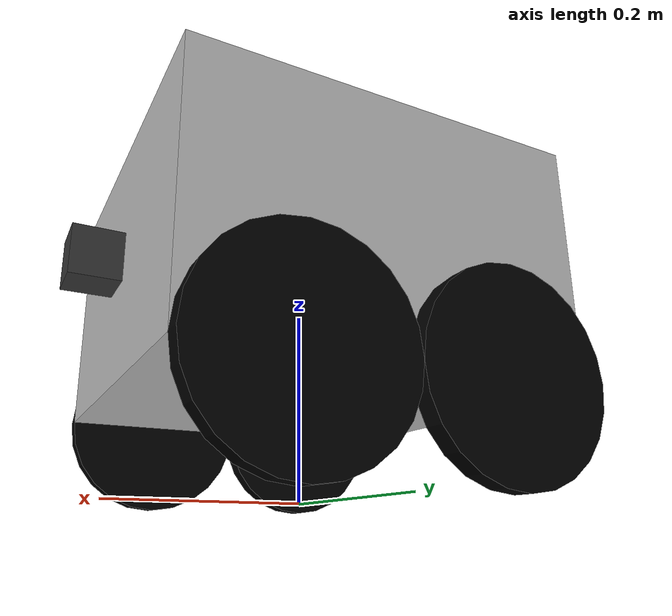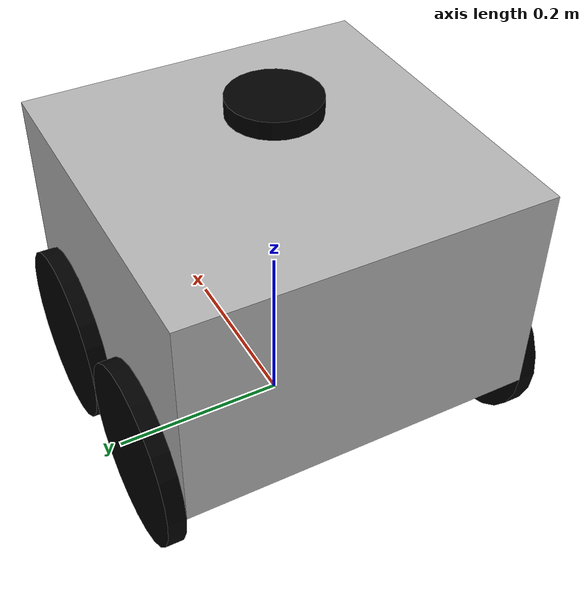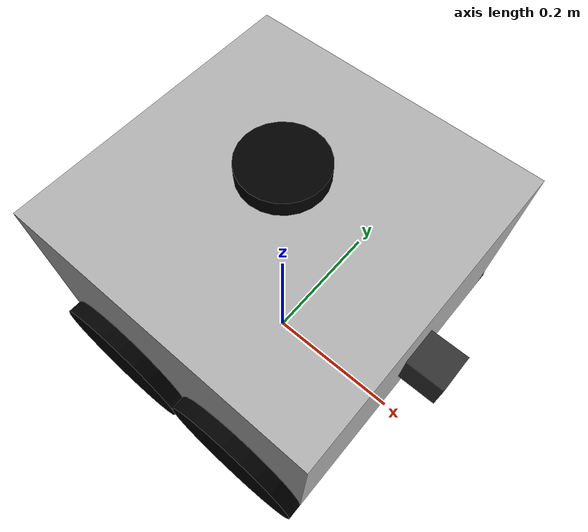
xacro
<?xml version="1.0"?>
<robot name="robo_bot" xmlns:xacro="http://ros.org/wiki/xacro">

  <material name="black">
    <color rgba="0.0 0.0 0.0 1.0"/>
  </material>

  <!-- Robot Parameters -->
  <xacro:property name="wheel_radius" value="0.1"/>
  <xacro:property name="wheel_width" value="0.02"/>
  <xacro:property name="base_length" value="0.4"/>
  <xacro:property name="base_width" value="0.4"/>
  <xacro:property name="base_height" value="0.25"/>
  <xacro:property name="clearance" value="0.00"/>

  <!-- Base Link -->
  <link name="base">
    <visual>
      <geometry>
        <box size="${base_length} ${base_width} ${base_height}"/>
      </geometry>
      <origin xyz="0 0 ${wheel_radius + clearance + base_height/2}" rpy="0 0 0"/>
      <material name="gray">
        <color rgba="0.7 0.7 0.7 1.0"/>
      </material>
    </visual>
    <collision>
      <geometry>
        <box size="${base_length} ${base_width} ${base_height}"/>
      </geometry>
      <origin xyz="0 0 ${wheel_radius + clearance + base_height/2}" rpy="0 0 0"/>
    </collision>
    <inertial>
      <mass value="0.5"/>
      <origin xyz="0 0 ${wheel_radius + clearance + base_height/2}" rpy="0 0 0"/>
      <inertia ixx="0.01" iyy="0.01" izz="0.01" ixy="0.0" ixz="0.0" iyz="0.0"/>
    </inertial>
  </link>

<xacro:macro name="wheel" params="name x_pos y_pos mimic_joint=''" >
  <link name="${name}">
    <visual>
      <geometry>
        <cylinder radius="${wheel_radius}" length="${wheel_width}"/>
      </geometry>
      <origin xyz="0 0 0" rpy="1.5708 0 0"/>
      <material name="black"/>
    </visual>
    <collision>
      <geometry>
        <cylinder radius="${wheel_radius}" length="${wheel_width}"/>
      </geometry>
      <origin xyz="0 0 0" rpy="1.5708 0 0"/>
    </collision>
    <inertial>
      <mass value="0.5"/>
      <origin xyz="0 0 0" rpy="0 0 0"/>
      <inertia
        ixx="0.0001875"
        iyy="0.0001875"
        izz="0.000625"
        ixy="0.0"
        ixz="0.0"
        iyz="0.0"/>
    </inertial>
  </link>

  <gazebo reference="${name}">
    <mu1>0.1</mu1>
    <mu2>0.1</mu2>
    <kp>100000.0</kp>
    <kd>1.0</kd>
    <material>Gazebo/Black</material>
  </gazebo>

  <joint name="${name}_joint" type="continuous">
    <parent link="base"/>
    <child link="${name}"/>
    <origin xyz="${x_pos} ${y_pos} ${wheel_radius}" rpy="0 0 0"/>
    <axis xyz="0 1 0"/>
    <limit effort="100.0" velocity="5.0"/>
    <dynamics damping="0.0" friction="0.0"/>
    <xacro:if value="${mimic_joint != ''}">
      <mimic joint="${mimic_joint}" multiplier="1"/>
    </xacro:if>
  </joint>
</xacro:macro>

<!-- Front wheels mimic rear wheels -->
<xacro:wheel name="wheel_fl" x_pos="${ base_length/2 - wheel_radius }" y_pos="${  base_width/2 + wheel_width/2 }" mimic_joint="wheel_rl_joint"/>
<xacro:wheel name="wheel_fr" x_pos="${ base_length/2 - wheel_radius }" y_pos="${ -base_width/2 - wheel_width/2 }" mimic_joint="wheel_rr_joint"/>

<!-- Rear wheels are driven -->
<xacro:wheel name="wheel_rl" x_pos="${-base_length/2 + wheel_radius }" y_pos="${  base_width/2 + wheel_width/2 }"/>
<xacro:wheel name="wheel_rr" x_pos="${-base_length/2 + wheel_radius }" y_pos="${ -base_width/2 - wheel_width/2 }"/>

  <!-- Differential Drive Plugin -->
  <gazebo>
    <plugin name="diff_drive_controller_rear" filename="libgazebo_ros_diff_drive.so">
      <ros>
        <remapping>cmd_vel:=/cmd_vel</remapping>
      </ros>
      <left_joint>wheel_rl_joint</left_joint>
      <right_joint>wheel_rr_joint</right_joint>
      <wheel_separation>${base_width}</wheel_separation>
      <wheel_radius>${wheel_radius}</wheel_radius>
      <max_wheel_torque>1.0</max_wheel_torque>
      <max_wheel_speed>5.0</max_wheel_speed>
      <command_topic>/cmd_vel</command_topic>
      <odometry_topic>/odom</odometry_topic>
      <odometry_frame>odom</odometry_frame>
      <robot_base_frame>base</robot_base_frame>
      <publish_odom>true</publish_odom>
      <publish_tf>true</publish_tf>
    </plugin>
  </gazebo>

  <gazebo>
    <plugin name="diff_drive_controller_front" filename="libgazebo_ros_diff_drive.so">
      <ros>
        <remapping>cmd_vel:=/cmd_vel</remapping>
      </ros>
      <left_joint>wheel_fl_joint</left_joint>
      <right_joint>wheel_fr_joint</right_joint>
      <wheel_separation>${base_width}</wheel_separation>
      <wheel_radius>${wheel_radius}</wheel_radius>
      <max_wheel_torque>1.0</max_wheel_torque>
      <max_wheel_speed>5.0</max_wheel_speed>
      <command_topic>/cmd_vel</command_topic>
      <odometry_topic>/odom</odometry_topic>
      <odometry_frame>odom</odometry_frame>
      <robot_base_frame>base</robot_base_frame>
      <publish_odom>true</publish_odom>
      <publish_tf>true</publish_tf>
    </plugin>
  </gazebo>

   <!-- LIDAR -->
  <link name="lidar_link">
    <visual>
      <geometry>
        <cylinder radius="0.05" length="0.02"/>
      </geometry>
      <origin xyz="0 0 0" rpy="0 0 0"/>
      <material name="black">
        <color rgba="0.0 0.0 0.0 1.0"/>
      </material>
    </visual>
    <collision>
      <geometry>
        <cylinder radius="0.05" length="0.02"/>
      </geometry>
      <origin xyz="0 0 0" rpy="0 0 0"/>
    </collision>
    <inertial>
      <mass value="0.1"/>
      <origin xyz="0 0 0" rpy="0 0 0"/>
      <inertia ixx="0.0001" iyy="0.0001" izz="0.0001" ixy="0.0" ixz="0.0" iyz="0.0"/>
    </inertial>
  </link>

  <joint name="lidar_joint" type="fixed">
    <parent link="base"/>
    <child link="lidar_link"/>
    <origin xyz="0 0 ${wheel_radius + clearance + base_height + 0.05}" rpy="0 0 0"/>
  </joint>

  <gazebo reference="lidar_link">
    <sensor name="lidar_sensor" type="ray">
      <pose>0 0 0 0 0 0</pose>
      <update_rate>30</update_rate>
      <visualize>true</visualize>
      <ray>
        <scan>
          <horizontal>
            <samples>360</samples>
            <resolution>1</resolution>
            <min_angle>-3.14</min_angle>
            <max_angle>3.14</max_angle>
          </horizontal>
        </scan>
        <range>
          <min>0.1</min>
          <max>10.0</max>
          <resolution>0.01</resolution>
        </range>
      </ray>
      <plugin name="gazebo_ros_laser" filename="libgazebo_ros_ray_sensor.so">
        <frame_name>lidar_link</frame_name>
        <output_type>sensor_msgs/LaserScan</output_type>
      </plugin>
    </sensor>
  </gazebo>

  <!-- Camera -->
  <link name="camera_link">
    <visual>
      <geometry>
        <box size="0.05 0.05 0.05"/>
      </geometry>
      <origin xyz="0 0 0" rpy="0 0 0"/>
      <material name="black">
        <color rgba="0.2 0.2 0.2 1.0"/>
      </material>
    </visual>
  </link>

  <joint name="camera_joint" type="fixed">
    <parent link="base"/>
    <child link="camera_link"/>
    <origin xyz="${base_length/2 + 0.025} 0 ${wheel_radius + clearance + base_height/2}" rpy="0 0 0"/>
  </joint>

  <gazebo reference="camera_link">
    <sensor name="camera" type="camera">
      <always_on>true</always_on>
      <update_rate>30.0</update_rate>
      <visualize>true</visualize>
      <camera>
        <horizontal_fov>1.5</horizontal_fov>
        <image>
          <width>1280</width>
          <height>720</height>
          <format>R8G8B8</format>
        </image>
        <clip>
          <near>0.1</near>
          <far>100.0</far>
        </clip>
      </camera>
      <plugin name="gazebo_ros_camera" filename="libgazebo_ros_camera.so">
        <ros>
          <remapping>image_raw:=/camera/image_raw</remapping>
        </ros>
        <camera_name>front_camera</camera_name>
        <frame_name>camera_link</frame_name>
      </plugin>
    </sensor>
  </gazebo>

  <gazebo>
    <pose>1 1 0.1 0 0 0</pose>
  </gazebo>

</robot>
